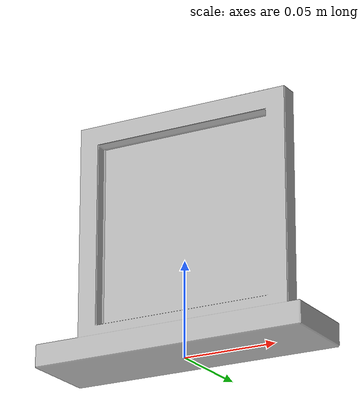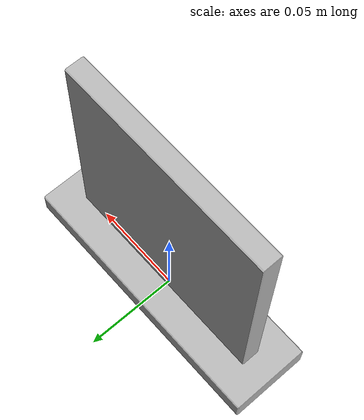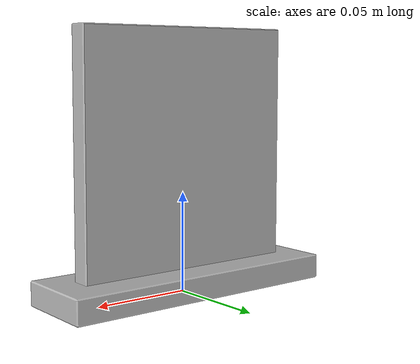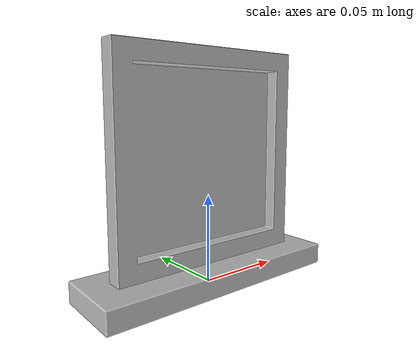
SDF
<?xml version="1.0" ?>
<sdf version="1.6">
  <model name="aws_robomaker_residential_DeskPortraitD_02">
    <link name="link">
      <inertial>
        <mass>0.4</mass>
          <inertia>
            <ixx>0.0616</ixx>
            <ixy>0</ixy>
            <ixz>0</ixz>
            <iyy>0.1313</iyy>
            <iyz>0</iyz>
            <izz>0.0803</izz>
          </inertia>
      </inertial>

      <collision name="collision">
        <geometry>
          <mesh>
            <uri>model://aws_robomaker_residential_DeskPortraitD_02/meshes/aws_DeskPortraitD_01_collision.DAE</uri>
            <scale>1 1 1</scale>
          </mesh>
        </geometry>

        <surface>
          <friction>
            <ode>
              <mu>0.7</mu>
              <mu2>0.7</mu2>
            </ode>
          </friction>

          <contact>
            <ode>
              <kd>28500</kd>
            </ode>
          </contact>

        </surface>

      </collision>

      <visual name="visual">
	    <geometry>
          <mesh>
            <uri>model://aws_robomaker_residential_DeskPortraitD_02/meshes/aws_DeskPortraitD_01_visual.DAE</uri>
          </mesh>
        </geometry>
      <meta> <layer> 1 </layer></meta>
</visual>
    </link>
  </model>
</sdf>
